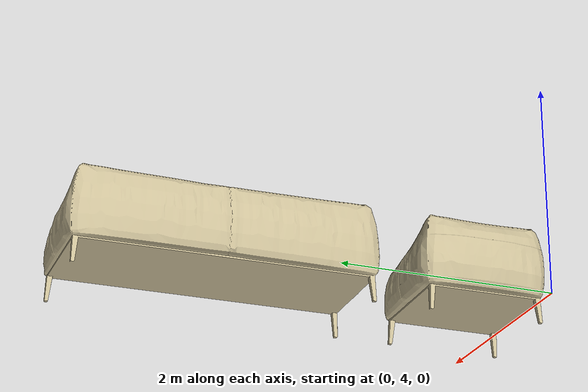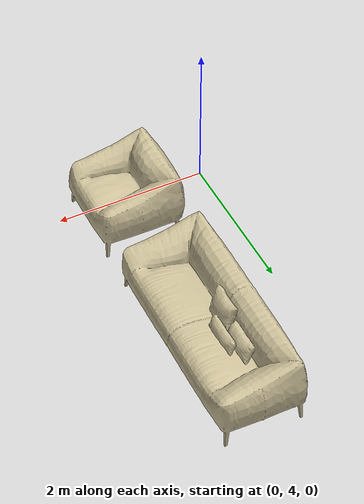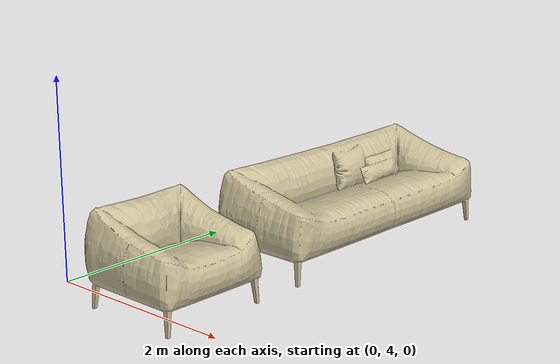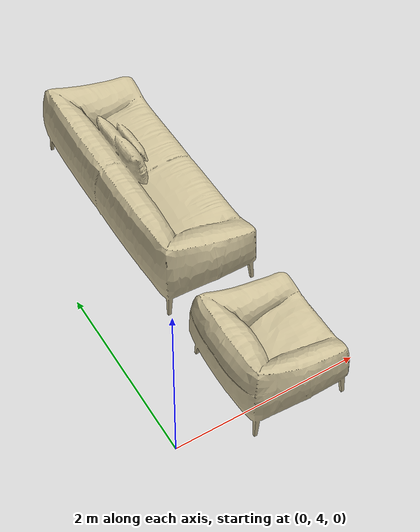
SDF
<?xml version="1.0" ?>
<sdf version="1.8">
  <model name="sofa">
    <static>true</static>
    <link name="sofa_link">
      <visual name="sofa_visual">
        <geometry>
          <mesh>
            <uri>model://sofa/sofa.stl</uri>
            <scale>0.03 0.03 0.03</scale>
          </mesh>
        </geometry>
      <material>
        <ambient>0.8 0.75 0.6 1</ambient>
        <diffuse>0.8 0.75 0.6 1</diffuse>
      </material>
      </visual>
      <collision name="sofa_collision">
        <geometry>
          <mesh>
            <uri>model://sofa/sofa.stl</uri>
            <scale>0.03 0.03 0.03</scale>
          </mesh>
        </geometry>
      </collision>
    </link>
  </model>
</sdf>
